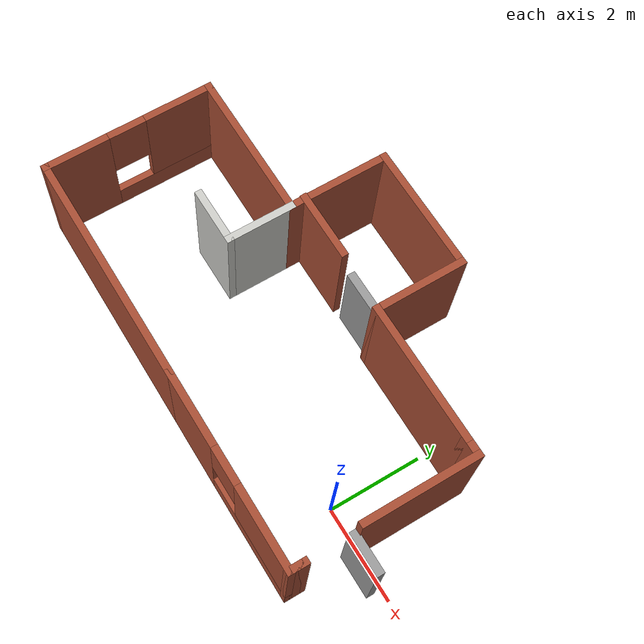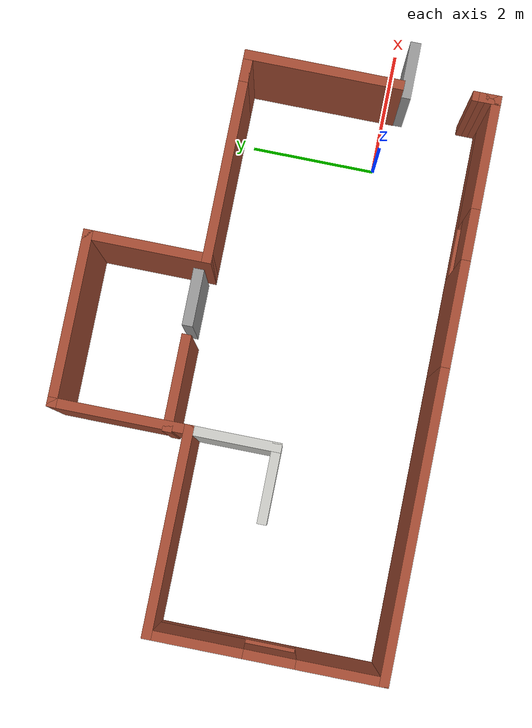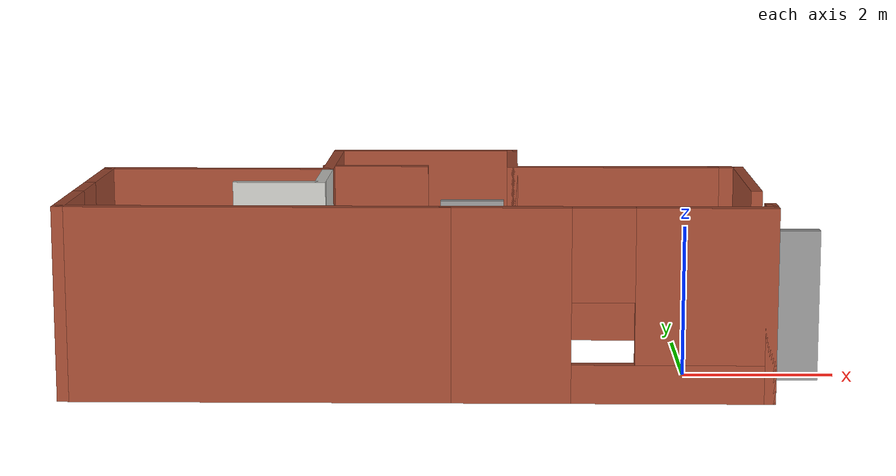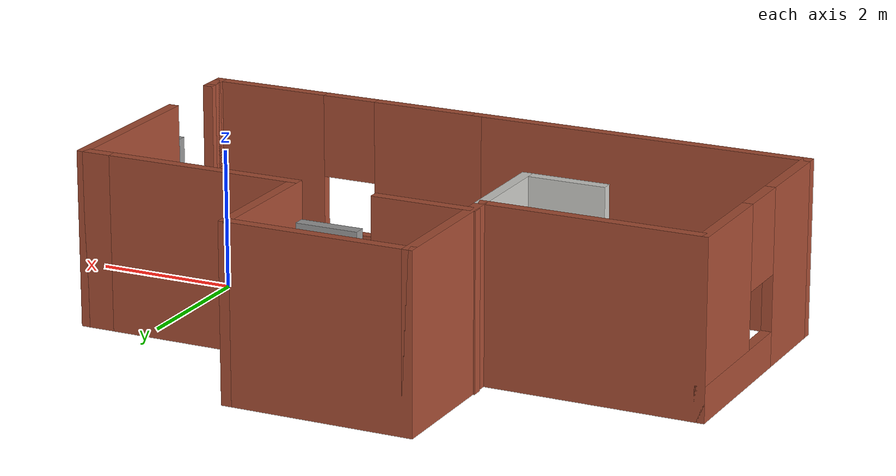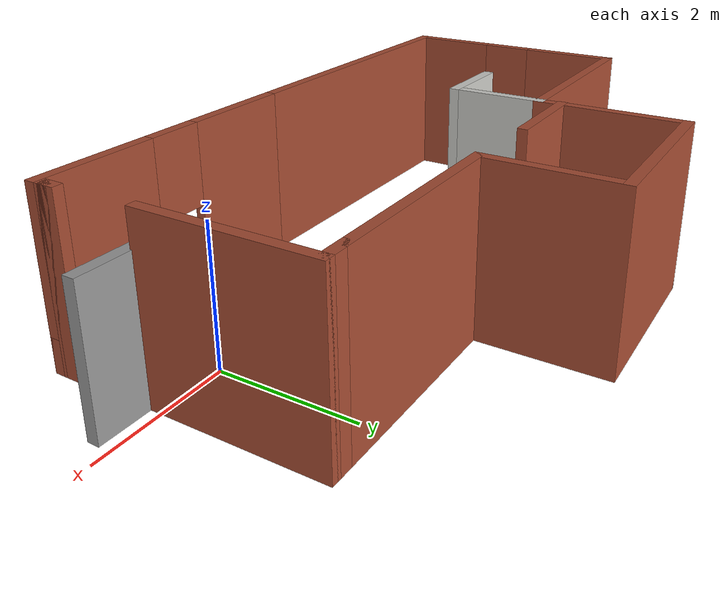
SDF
<?xml version='1.0'?>
<sdf version='1.7'>
  <model name='Test1'>
    <pose>-3.505 1.25 0 0 -0 0</pose>
    <link name='Door_1'>
      <collision name='Door_1_Collision'>
        <geometry>
          <box>
            <size>0.9 0.17 2</size>
          </box>
        </geometry>
        <pose>0 0 1 0 -0 0</pose>
      </collision>
      <visual name='Door_1_Visual'>
        <pose>0 0 1 0 -0 0</pose>
        <geometry>
          <box>
            <size>0.9 0.17 2</size>
          </box>
        </geometry>
        <material>
          <script>
            <uri>file://media/materials/scripts/gazebo.material</uri>
            <name>Gazebo/Grey</name>
          </script>
        </material>
      </visual>
      <pose>0.651935 1.12162 0 0 -0 0</pose>
    </link>
    <link name='Door_3'>
      <collision name='Door_3_Collision'>
        <geometry>
          <box>
            <size>0.9 0.17 2</size>
          </box>
        </geometry>
        <pose>0 0 1 0 -0 0</pose>
      </collision>
      <visual name='Door_3_Visual'>
        <pose>0 0 1 0 -0 0</pose>
        <geometry>
          <box>
            <size>0.9 0.17 2</size>
          </box>
        </geometry>
        <material>
          <script>
            <uri>file://media/materials/scripts/gazebo.material</uri>
            <name>Gazebo/Grey</name>
          </script>
        </material>
      </visual>
      <pose>4.80578 -1.48592 0 0 -0 0</pose>
    </link>
    <link name='Wall_0'>
      <pose>2.425 -2.85 0 0 -0 0</pose>
      <visual name='Wall_0_Visual_0'>
        <pose>-1.29328 0 1.25 0 -0 0</pose>
        <geometry>
          <box>
            <size>1.66343 0.15 2.5</size>
          </box>
        </geometry>
        <material>
          <script>
            <uri>file://media/materials/scripts/gazebo.material</uri>
            <name>Gazebo/Bricks</name>
          </script>
          <ambient>1 1 1 1</ambient>
        </material>
        <meta>
          <layer>0</layer>
        </meta>
      </visual>
      <collision name='Wall_0_Collision_0'>
        <geometry>
          <box>
            <size>1.66343 0.15 2.5</size>
          </box>
        </geometry>
        <pose>-1.29328 0 1.25 0 -0 0</pose>
      </collision>
      <visual name='Wall_0_Visual_1'>
        <pose>0.831716 0 0.25 0 -0 0</pose>
        <geometry>
          <box>
            <size>2.58657 0.15 0.5</size>
          </box>
        </geometry>
        <material>
          <script>
            <uri>file://media/materials/scripts/gazebo.material</uri>
            <name>Gazebo/Bricks</name>
          </script>
          <ambient>1 1 1 1</ambient>
        </material>
        <meta>
          <layer>0</layer>
        </meta>
      </visual>
      <collision name='Wall_0_Collision_1'>
        <geometry>
          <box>
            <size>2.58657 0.15 0.5</size>
          </box>
        </geometry>
        <pose>0.831716 0 0.25 0 -0 0</pose>
      </collision>
      <visual name='Wall_0_Visual_2'>
        <pose>1.23172 0 1.5 0 -0 0</pose>
        <geometry>
          <box>
            <size>1.78657 0.15 2</size>
          </box>
        </geometry>
        <material>
          <script>
            <uri>file://media/materials/scripts/gazebo.material</uri>
            <name>Gazebo/Bricks</name>
          </script>
          <ambient>1 1 1 1</ambient>
        </material>
        <meta>
          <layer>0</layer>
        </meta>
      </visual>
      <collision name='Wall_0_Collision_2'>
        <geometry>
          <box>
            <size>1.78657 0.15 2</size>
          </box>
        </geometry>
        <pose>1.23172 0 1.5 0 -0 0</pose>
      </collision>
      <visual name='Wall_0_Visual_3'>
        <pose>-0.061567 0 1.9 0 -0 0</pose>
        <geometry>
          <box>
            <size>0.8 0.15 1.2</size>
          </box>
        </geometry>
        <material>
          <script>
            <uri>file://media/materials/scripts/gazebo.material</uri>
            <name>Gazebo/Bricks</name>
          </script>
          <ambient>1 1 1 1</ambient>
        </material>
        <meta>
          <layer>0</layer>
        </meta>
      </visual>
      <collision name='Wall_0_Collision_3'>
        <geometry>
          <box>
            <size>0.8 0.15 1.2</size>
          </box>
        </geometry>
        <pose>-0.061567 0 1.9 0 -0 0</pose>
      </collision>
    </link>
    <link name='Wall_11'>
      <collision name='Wall_11_Collision'>
        <geometry>
          <box>
            <size>1.5 0.15 2.5</size>
          </box>
        </geometry>
        <pose>0 0 1.25 0 -0 0</pose>
      </collision>
      <visual name='Wall_11_Visual'>
        <pose>0 0 1.25 0 -0 0</pose>
        <geometry>
          <box>
            <size>1.5 0.15 2.5</size>
          </box>
        </geometry>
        <material>
          <script>
            <uri>file://media/materials/scripts/gazebo.material</uri>
            <name>Gazebo/Bricks</name>
          </script>
          <ambient>1 1 1 1</ambient>
        </material>
        <meta>
          <layer>0</layer>
        </meta>
      </visual>
      <pose>-0.721281 1.06842 0 0 -0 0</pose>
    </link>
    <link name='Wall_13'>
      <collision name='Wall_13_Collision'>
        <geometry>
          <box>
            <size>2.5 0.15 2.5</size>
          </box>
        </geometry>
        <pose>0 0 1.25 0 -0 0</pose>
      </collision>
      <visual name='Wall_13_Visual'>
        <pose>0 0 1.25 0 -0 0</pose>
        <geometry>
          <box>
            <size>2.5 0.15 2.5</size>
          </box>
        </geometry>
        <material>
          <script>
            <uri>file://media/materials/scripts/gazebo.material</uri>
            <name>Gazebo/Bricks</name>
          </script>
          <ambient>1 1 1 1</ambient>
        </material>
        <meta>
          <layer>0</layer>
        </meta>
      </visual>
      <pose>4.425 -0.175 0 0 -0 -1.5708</pose>
    </link>
    <link name='Wall_15'>
      <collision name='Wall_15_Collision'>
        <geometry>
          <box>
            <size>0.25 0.15 2.5</size>
          </box>
        </geometry>
        <pose>0 0 1.25 0 -0 0</pose>
      </collision>
      <visual name='Wall_15_Visual'>
        <pose>0 0 1.25 0 -0 0</pose>
        <geometry>
          <box>
            <size>0.25 0.15 2.5</size>
          </box>
        </geometry>
        <material>
          <script>
            <uri>file://media/materials/scripts/gazebo.material</uri>
            <name>Gazebo/Bricks</name>
          </script>
          <ambient>1 1 1 1</ambient>
        </material>
        <meta>
          <layer>0</layer>
        </meta>
      </visual>
      <pose>4.475 -2.8 0 0 -0 1.5708</pose>
    </link>
    <link name='Wall_16'>
      <collision name='Wall_16_Collision'>
        <geometry>
          <box>
            <size>0.25 0.15 2.5</size>
          </box>
        </geometry>
        <pose>0 0 1.25 0 -0 0</pose>
      </collision>
      <visual name='Wall_16_Visual'>
        <pose>0 0 1.25 0 -0 0</pose>
        <geometry>
          <box>
            <size>0.25 0.15 2.5</size>
          </box>
        </geometry>
        <material>
          <script>
            <uri>file://media/materials/scripts/gazebo.material</uri>
            <name>Gazebo/Bricks</name>
          </script>
          <ambient>1 1 1 1</ambient>
        </material>
        <meta>
          <layer>0</layer>
        </meta>
      </visual>
      <pose>4.475 -2.7 0 0 -0 1.5708</pose>
    </link>
    <link name='Wall_17'>
      <collision name='Wall_17_Collision'>
        <geometry>
          <box>
            <size>0.25 0.15 2.5</size>
          </box>
        </geometry>
        <pose>0 0 1.25 0 -0 0</pose>
      </collision>
      <visual name='Wall_17_Visual'>
        <pose>0 0 1.25 0 -0 0</pose>
        <geometry>
          <box>
            <size>0.25 0.15 2.5</size>
          </box>
        </geometry>
        <material>
          <script>
            <uri>file://media/materials/scripts/gazebo.material</uri>
            <name>Gazebo/Bricks</name>
          </script>
          <ambient>1 1 1 1</ambient>
        </material>
        <meta>
          <layer>0</layer>
        </meta>
      </visual>
      <pose>4.475 -2.6 0 0 -0 1.5708</pose>
    </link>
    <link name='Wall_19'>
      <collision name='Wall_19_Collision'>
        <geometry>
          <box>
            <size>1.5 0.15 2.5</size>
          </box>
        </geometry>
        <pose>0 0 1.25 0 -0 0</pose>
      </collision>
      <visual name='Wall_19_Visual'>
        <pose>0 0 1.25 0 -0 0</pose>
        <geometry>
          <box>
            <size>1.5 0.15 2.5</size>
          </box>
        </geometry>
        <material>
          <script>
            <uri>file://media/materials/scripts/gazebo.material</uri>
            <name>Gazebo/CeilingTiled</name>
          </script>
          <ambient>1 1 1 1</ambient>
        </material>
        <meta>
          <layer>0</layer>
        </meta>
      </visual>
      <pose>-1.375 0.075 0 0 -0 -1.5708</pose>
    </link>
    <link name='Wall_2'>
      <collision name='Wall_2_Collision'>
        <geometry>
          <box>
            <size>5 0.15 2.5</size>
          </box>
        </geometry>
        <pose>0 0 1.25 0 -0 0</pose>
      </collision>
      <visual name='Wall_2_Visual'>
        <pose>0 0 1.25 0 -0 0</pose>
        <geometry>
          <box>
            <size>5 0.15 2.5</size>
          </box>
        </geometry>
        <material>
          <script>
            <uri>file://media/materials/scripts/gazebo.material</uri>
            <name>Gazebo/Bricks</name>
          </script>
          <ambient>1 1 1 1</ambient>
        </material>
        <meta>
          <layer>0</layer>
        </meta>
      </visual>
      <pose>-2.05 -2.85 0 0 -0 3.14159</pose>
    </link>
    <link name='Wall_20'>
      <collision name='Wall_20_Collision'>
        <geometry>
          <box>
            <size>1.25 0.15 2.5</size>
          </box>
        </geometry>
        <pose>0 0 1.25 0 -0 0</pose>
      </collision>
      <visual name='Wall_20_Visual'>
        <pose>0 0 1.25 0 -0 0</pose>
        <geometry>
          <box>
            <size>1.25 0.15 2.5</size>
          </box>
        </geometry>
        <material>
          <script>
            <uri>file://media/materials/scripts/gazebo.material</uri>
            <name>Gazebo/CeilingTiled</name>
          </script>
          <ambient>1 1 1 1</ambient>
        </material>
        <meta>
          <layer>0</layer>
        </meta>
      </visual>
      <pose>-1.925 -0.6 0 0 -0 3.14159</pose>
    </link>
    <link name='Wall_3'>
      <pose>-4.475 -1.05 0 0 -0 1.5708</pose>
      <visual name='Wall_3_Visual_0'>
        <pose>-1.16344 0 1.25 0 -0 0</pose>
        <geometry>
          <box>
            <size>1.42313 0.15 2.5</size>
          </box>
        </geometry>
        <material>
          <script>
            <uri>file://media/materials/scripts/gazebo.material</uri>
            <name>Gazebo/Bricks</name>
          </script>
          <ambient>1 1 1 1</ambient>
        </material>
        <meta>
          <layer>0</layer>
        </meta>
      </visual>
      <collision name='Wall_3_Collision_0'>
        <geometry>
          <box>
            <size>1.42313 0.15 2.5</size>
          </box>
        </geometry>
        <pose>-1.16344 0 1.25 0 -0 0</pose>
      </collision>
      <visual name='Wall_3_Visual_1'>
        <pose>0.711563 0 0.25 0 -0 0</pose>
        <geometry>
          <box>
            <size>2.32687 0.15 0.5</size>
          </box>
        </geometry>
        <material>
          <script>
            <uri>file://media/materials/scripts/gazebo.material</uri>
            <name>Gazebo/Bricks</name>
          </script>
          <ambient>1 1 1 1</ambient>
        </material>
        <meta>
          <layer>0</layer>
        </meta>
      </visual>
      <collision name='Wall_3_Collision_1'>
        <geometry>
          <box>
            <size>2.32687 0.15 0.5</size>
          </box>
        </geometry>
        <pose>0.711563 0 0.25 0 -0 0</pose>
      </collision>
      <visual name='Wall_3_Visual_2'>
        <pose>1.11156 0 1.5 0 -0 0</pose>
        <geometry>
          <box>
            <size>1.52687 0.15 2</size>
          </box>
        </geometry>
        <material>
          <script>
            <uri>file://media/materials/scripts/gazebo.material</uri>
            <name>Gazebo/Bricks</name>
          </script>
          <ambient>1 1 1 1</ambient>
        </material>
        <meta>
          <layer>0</layer>
        </meta>
      </visual>
      <collision name='Wall_3_Collision_2'>
        <geometry>
          <box>
            <size>1.52687 0.15 2</size>
          </box>
        </geometry>
        <pose>1.11156 0 1.5 0 -0 0</pose>
      </collision>
      <visual name='Wall_3_Visual_3'>
        <pose>-0.051874 0 1.9 0 -0 0</pose>
        <geometry>
          <box>
            <size>0.8 0.15 1.2</size>
          </box>
        </geometry>
        <material>
          <script>
            <uri>file://media/materials/scripts/gazebo.material</uri>
            <name>Gazebo/Bricks</name>
          </script>
          <ambient>1 1 1 1</ambient>
        </material>
        <meta>
          <layer>0</layer>
        </meta>
      </visual>
      <collision name='Wall_3_Collision_3'>
        <geometry>
          <box>
            <size>0.8 0.15 1.2</size>
          </box>
        </geometry>
        <pose>-0.051874 0 1.9 0 -0 0</pose>
      </collision>
    </link>
    <link name='Wall_4'>
      <collision name='Wall_4_Collision'>
        <geometry>
          <box>
            <size>3.25 0.15 2.5</size>
          </box>
        </geometry>
        <pose>0 0 1.25 0 -0 0</pose>
      </collision>
      <visual name='Wall_4_Visual'>
        <pose>0 0 1.25 0 -0 0</pose>
        <geometry>
          <box>
            <size>3.25 0.15 2.5</size>
          </box>
        </geometry>
        <material>
          <script>
            <uri>file://media/materials/scripts/gazebo.material</uri>
            <name>Gazebo/Bricks</name>
          </script>
          <ambient>1 1 1 1</ambient>
        </material>
        <meta>
          <layer>0</layer>
        </meta>
      </visual>
      <pose>-2.925 0.75 0 0 -0 0</pose>
    </link>
    <link name='Wall_5'>
      <collision name='Wall_5_Collision'>
        <geometry>
          <box>
            <size>2.25 0.15 2.5</size>
          </box>
        </geometry>
        <pose>0 0 1.25 0 -0 0</pose>
      </collision>
      <visual name='Wall_5_Visual'>
        <pose>0 0 1.25 0 -0 0</pose>
        <geometry>
          <box>
            <size>2.25 0.15 2.5</size>
          </box>
        </geometry>
        <material>
          <script>
            <uri>file://media/materials/scripts/gazebo.material</uri>
            <name>Gazebo/Bricks</name>
          </script>
          <ambient>1 1 1 1</ambient>
        </material>
        <meta>
          <layer>0</layer>
        </meta>
      </visual>
      <pose>-1.375 1.8 0 0 -0 1.5708</pose>
    </link>
    <link name='Wall_6'>
      <collision name='Wall_6_Collision'>
        <geometry>
          <box>
            <size>2.75 0.15 2.5</size>
          </box>
        </geometry>
        <pose>0 0 1.25 0 -0 0</pose>
      </collision>
      <visual name='Wall_6_Visual'>
        <pose>0 0 1.25 0 -0 0</pose>
        <geometry>
          <box>
            <size>2.75 0.15 2.5</size>
          </box>
        </geometry>
        <material>
          <script>
            <uri>file://media/materials/scripts/gazebo.material</uri>
            <name>Gazebo/Bricks</name>
          </script>
          <ambient>1 1 1 1</ambient>
        </material>
        <meta>
          <layer>0</layer>
        </meta>
      </visual>
      <pose>-0.075 2.85 0 0 -0 0</pose>
    </link>
    <link name='Wall_7'>
      <collision name='Wall_7_Collision'>
        <geometry>
          <box>
            <size>2 0.15 2.5</size>
          </box>
        </geometry>
        <pose>0 0 1.25 0 -0 0</pose>
      </collision>
      <visual name='Wall_7_Visual'>
        <pose>0 0 1.25 0 -0 0</pose>
        <geometry>
          <box>
            <size>2 0.15 2.5</size>
          </box>
        </geometry>
        <material>
          <script>
            <uri>file://media/materials/scripts/gazebo.material</uri>
            <name>Gazebo/Bricks</name>
          </script>
          <ambient>1 1 1 1</ambient>
        </material>
        <meta>
          <layer>0</layer>
        </meta>
      </visual>
      <pose>1.225 1.925 0 0 -0 -1.5708</pose>
    </link>
    <link name='Wall_8'>
      <collision name='Wall_8_Collision'>
        <geometry>
          <box>
            <size>3 0.15 2.5</size>
          </box>
        </geometry>
        <pose>0 0 1.25 0 -0 0</pose>
      </collision>
      <visual name='Wall_8_Visual'>
        <pose>0 0 1.25 0 -0 0</pose>
        <geometry>
          <box>
            <size>3 0.15 2.5</size>
          </box>
        </geometry>
        <material>
          <script>
            <uri>file://media/materials/scripts/gazebo.material</uri>
            <name>Gazebo/Bricks</name>
          </script>
          <ambient>1 1 1 1</ambient>
        </material>
        <meta>
          <layer>0</layer>
        </meta>
      </visual>
      <pose>2.65 1 0 0 -0 0</pose>
    </link>
    <link name='Wall_9'>
      <collision name='Wall_9_Collision'>
        <geometry>
          <box>
            <size>0.5 0.15 2.5</size>
          </box>
        </geometry>
        <pose>0 0 1.25 0 -0 0</pose>
      </collision>
      <visual name='Wall_9_Visual'>
        <pose>0 0 1.25 0 -0 0</pose>
        <geometry>
          <box>
            <size>0.5 0.15 2.5</size>
          </box>
        </geometry>
        <material>
          <script>
            <uri>file://media/materials/scripts/gazebo.material</uri>
            <name>Gazebo/Bricks</name>
          </script>
          <ambient>1 1 1 1</ambient>
        </material>
        <meta>
          <layer>0</layer>
        </meta>
      </visual>
      <pose>4.25 1 0 0 -0 0</pose>
    </link>
    <static>1</static>
  </model>
</sdf>
